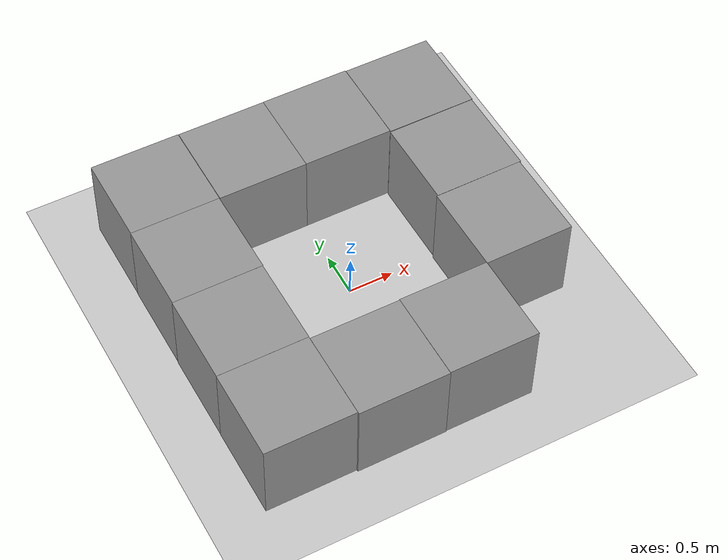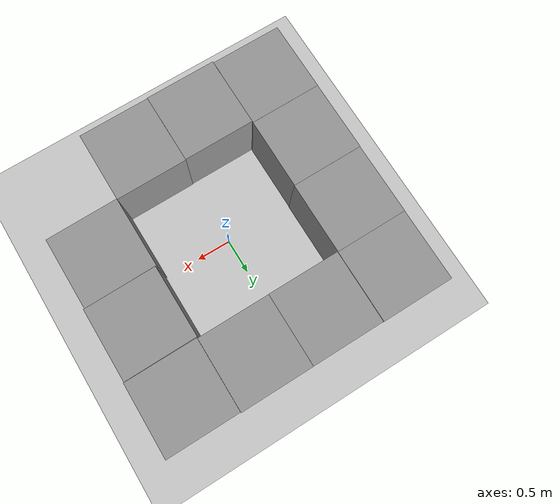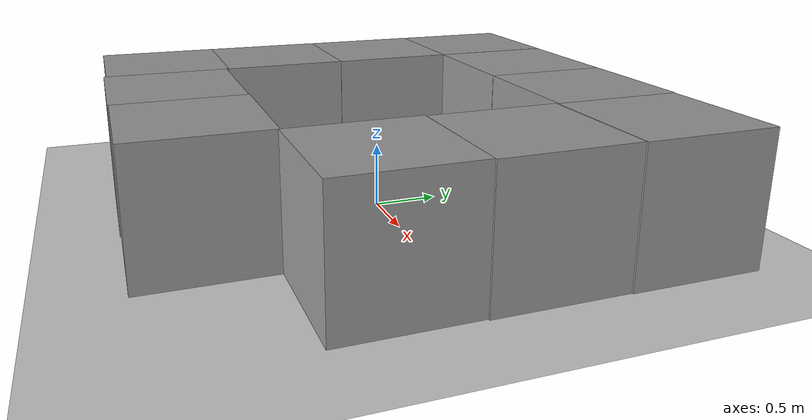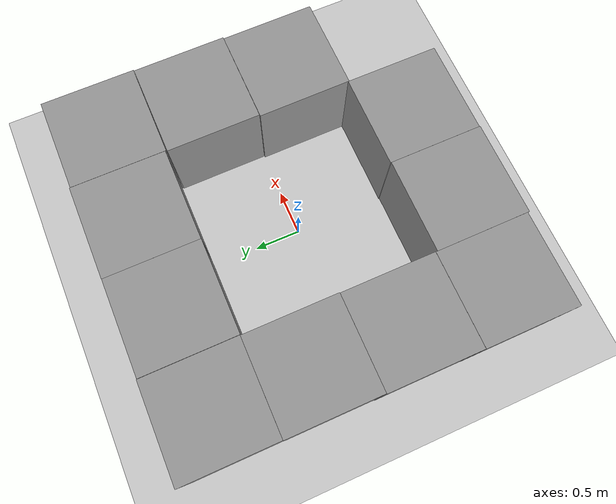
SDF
<sdf version="1.7">
 <world name="default">
  <light name="sun" type="directional">
   <pose>0 0 10 0 -0 0</pose>
   <diffuse>0.8 0.8 0.8 1</diffuse>
   <specular>0.2 0.2 0.2 1</specular>
   <attenuation>
    <range>1000</range>
    <constant>0.9</constant>
    <linear>0.01</linear>
    <quadratic>0.001</quadratic>
   </attenuation>
   <direction>-0.5 0.1 -0.9</direction>
   <spot><inner_angle>0</inner_angle><outer_angle>0</outer_angle><falloff>0</falloff></spot>
  </light>
  <model name="ground_plane">
   <static>1</static>
   <link name="link">
    <collision name="collision">
     <geometry><plane><normal>0 0 1</normal><size>100 100</size></plane></geometry>
     <surface>
      <contact><collide_bitmask>65535</collide_bitmask></contact>
      <friction><ode><mu>100</mu><mu2>50</mu2></ode></friction>
     </surface>
    </collision>
    <visual name="visual">
     <cast_shadows>0</cast_shadows>
     <geometry><plane><normal>0 0 1</normal><size>100 100</size></plane></geometry>
     <material>
      <script><uri>file://media/materials/scripts/gazebo.material</uri><name>Gazebo/Grey</name></script>
     </material>
    </visual>
   </link>
  </model>
  <gravity>0 0 -9.8</gravity>
  <magnetic_field>6e-06 2.3e-05 -4.2e-05</magnetic_field>
  <atmosphere type="adiabatic"/>
  <physics type="ode">
   <max_step_size>0.001</max_step_size>
   <real_time_factor>1</real_time_factor>
   <real_time_update_rate>1000</real_time_update_rate>
  </physics>
  <scene><ambient>0.4 0.4 0.4 1</ambient><background>0.7 0.7 0.7 1</background><shadows>1</shadows></scene>
  <spherical_coordinates>
   <surface_model>EARTH_WGS84</surface_model>
   <latitude_deg>0</latitude_deg>
   <longitude_deg>0</longitude_deg>
   <elevation>0</elevation>
   <heading_deg>0</heading_deg>
  </spherical_coordinates>
  <model name="unit_box_clone">
   <pose>1.49757 -0.506553 0.5 0 -0 0.00675</pose>
   <link name="link">
    <inertial>
     <mass>1</mass>
     <inertia>
      <ixx>0.166667</ixx>
      <ixy>0</ixy>
      <ixz>0</ixz>
      <iyy>0.166667</iyy>
      <iyz>0</iyz>
      <izz>0.166667</izz>
     </inertia>
    </inertial>
    <collision name="collision"><geometry><box><size>1 1 1</size></box></geometry></collision>
    <visual name="visual">
     <geometry><box><size>1 1 1</size></box></geometry>
     <material>
      <script><name>Gazebo/Grey</name><uri>file://media/materials/scripts/gazebo.material</uri></script>
     </material>
    </visual>
   </link>
  </model>
  <model name="unit_box_clone_0">
   <pose>0.501161 -1.49825 0.5 0 -0 0.000991</pose>
   <link name="link">
    <inertial>
     <mass>1</mass>
     <inertia>
      <ixx>0.166667</ixx>
      <ixy>0</ixy>
      <ixz>0</ixz>
      <iyy>0.166667</iyy>
      <iyz>0</iyz>
      <izz>0.166667</izz>
     </inertia>
    </inertial>
    <collision name="collision"><geometry><box><size>1 1 1</size></box></geometry></collision>
    <visual name="visual">
     <geometry><box><size>1 1 1</size></box></geometry>
     <material>
      <script><name>Gazebo/Grey</name><uri>file://media/materials/scripts/gazebo.material</uri></script>
     </material>
    </visual>
   </link>
  </model>
  <model name="unit_box">
   <pose>-0.499017 -1.5069 0.499995 0 1e-05 0.000902</pose>
   <link name="link">
    <inertial>
     <mass>1</mass>
     <inertia>
      <ixx>0.166667</ixx>
      <ixy>0</ixy>
      <ixz>0</ixz>
      <iyy>0.166667</iyy>
      <iyz>0</iyz>
      <izz>0.166667</izz>
     </inertia>
    </inertial>
    <collision name="collision"><geometry><box><size>1 1 1</size></box></geometry></collision>
    <visual name="visual">
     <geometry><box><size>1 1 1</size></box></geometry>
     <material>
      <script><name>Gazebo/Grey</name><uri>file://media/materials/scripts/gazebo.material</uri></script>
     </material>
    </visual>
   </link>
  </model>
  <model name="unit_box_0">
   <pose>1.50663 0.494681 0.5 0 -0 0.004552</pose>
   <link name="link">
    <inertial>
     <mass>1</mass>
     <inertia>
      <ixx>0.166667</ixx>
      <ixy>0</ixy>
      <ixz>0</ixz>
      <iyy>0.166667</iyy>
      <iyz>0</iyz>
      <izz>0.166667</izz>
     </inertia>
    </inertial>
    <collision name="collision"><geometry><box><size>1 1 1</size></box></geometry></collision>
    <visual name="visual">
     <geometry><box><size>1 1 1</size></box></geometry>
     <material>
      <script><name>Gazebo/Grey</name><uri>file://media/materials/scripts/gazebo.material</uri></script>
     </material>
    </visual>
   </link>
  </model>
  <model name="unit_box_1">
   <pose>1.51399 1.50037 0.499995 0 1e-05 0</pose>
   <link name="link">
    <inertial>
     <mass>1</mass>
     <inertia>
      <ixx>0.166667</ixx>
      <ixy>0</ixy>
      <ixz>0</ixz>
      <iyy>0.166667</iyy>
      <iyz>0</iyz>
      <izz>0.166667</izz>
     </inertia>
    </inertial>
    <collision name="collision"><geometry><box><size>1 1 1</size></box></geometry></collision>
    <visual name="visual">
     <geometry><box><size>1 1 1</size></box></geometry>
     <material>
      <script><name>Gazebo/Grey</name><uri>file://media/materials/scripts/gazebo.material</uri></script>
     </material>
    </visual>
   </link>
  </model>
  <model name="unit_box_2">
   <pose>0.512991 1.50939 0.5 0 -0 1e-06</pose>
   <link name="link">
    <inertial>
     <mass>1</mass>
     <inertia>
      <ixx>0.166667</ixx>
      <ixy>0</ixy>
      <ixz>0</ixz>
      <iyy>0.166667</iyy>
      <iyz>0</iyz>
      <izz>0.166667</izz>
     </inertia>
    </inertial>
    <collision name="collision"><geometry><box><size>1 1 1</size></box></geometry></collision>
    <visual name="visual">
     <geometry><box><size>1 1 1</size></box></geometry>
     <material>
      <script><name>Gazebo/Grey</name><uri>file://media/materials/scripts/gazebo.material</uri></script>
     </material>
    </visual>
   </link>
  </model>
  <model name="unit_box_3">
   <pose>-0.487019 1.50765 0.499995 1e-05 0 1e-06</pose>
   <link name="link">
    <inertial>
     <mass>1</mass>
     <inertia>
      <ixx>0.166667</ixx>
      <ixy>0</ixy>
      <ixz>0</ixz>
      <iyy>0.166667</iyy>
      <iyz>0</iyz>
      <izz>0.166667</izz>
     </inertia>
    </inertial>
    <collision name="collision"><geometry><box><size>1 1 1</size></box></geometry></collision>
    <visual name="visual">
     <geometry><box><size>1 1 1</size></box></geometry>
     <material>
      <script><name>Gazebo/Grey</name><uri>file://media/materials/scripts/gazebo.material</uri></script>
     </material>
    </visual>
   </link>
  </model>
  <model name="unit_box_4">
   <pose>-1.49021 1.51231 0.5 0 -0 0.000578</pose>
   <link name="link">
    <inertial>
     <mass>1</mass>
     <inertia>
      <ixx>0.166667</ixx>
      <ixy>0</ixy>
      <ixz>0</ixz>
      <iyy>0.166667</iyy>
      <iyz>0</iyz>
      <izz>0.166667</izz>
     </inertia>
    </inertial>
    <collision name="collision"><geometry><box><size>1 1 1</size></box></geometry></collision>
    <visual name="visual">
     <geometry><box><size>1 1 1</size></box></geometry>
     <material>
      <script><name>Gazebo/Grey</name><uri>file://media/materials/scripts/gazebo.material</uri></script>
     </material>
    </visual>
   </link>
  </model>
  <model name="unit_box_4_clone">
   <pose>-1.49282 0.512235 0.5 0 -0 0.000604</pose>
   <link name="link">
    <inertial>
     <mass>1</mass>
     <inertia>
      <ixx>0.166667</ixx>
      <ixy>0</ixy>
      <ixz>0</ixz>
      <iyy>0.166667</iyy>
      <iyz>0</iyz>
      <izz>0.166667</izz>
     </inertia>
    </inertial>
    <collision name="collision"><geometry><box><size>1 1 1</size></box></geometry></collision>
    <visual name="visual">
     <geometry><box><size>1 1 1</size></box></geometry>
     <material>
      <script><name>Gazebo/Grey</name><uri>file://media/materials/scripts/gazebo.material</uri></script>
     </material>
    </visual>
   </link>
  </model>
  <model name="unit_box_5">
   <pose>-1.49745 -0.487811 0.5 0 -0 0.000639</pose>
   <link name="link">
    <inertial>
     <mass>1</mass>
     <inertia>
      <ixx>0.166667</ixx>
      <ixy>0</ixy>
      <ixz>0</ixz>
      <iyy>0.166667</iyy>
      <iyz>0</iyz>
      <izz>0.166667</izz>
     </inertia>
    </inertial>
    <collision name="collision"><geometry><box><size>1 1 1</size></box></geometry></collision>
    <visual name="visual">
     <geometry><box><size>1 1 1</size></box></geometry>
     <material>
      <script><name>Gazebo/Grey</name><uri>file://media/materials/scripts/gazebo.material</uri></script>
     </material>
    </visual>
   </link>
  </model>
  <model name="unit_box_6">
   <pose>-1.49919 -1.48795 0.499995 0 1e-05 0.000689</pose>
   <link name="link">
    <inertial>
     <mass>1</mass>
     <inertia>
      <ixx>0.166667</ixx>
      <ixy>0</ixy>
      <ixz>0</ixz>
      <iyy>0.166667</iyy>
      <iyz>0</iyz>
      <izz>0.166667</izz>
     </inertia>
    </inertial>
    <collision name="collision"><geometry><box><size>1 1 1</size></box></geometry></collision>
    <visual name="visual">
     <geometry><box><size>1 1 1</size></box></geometry>
     <material>
      <script><name>Gazebo/Grey</name><uri>file://media/materials/scripts/gazebo.material</uri></script>
     </material>
    </visual>
   </link>
  </model>
 </world>
</sdf>
